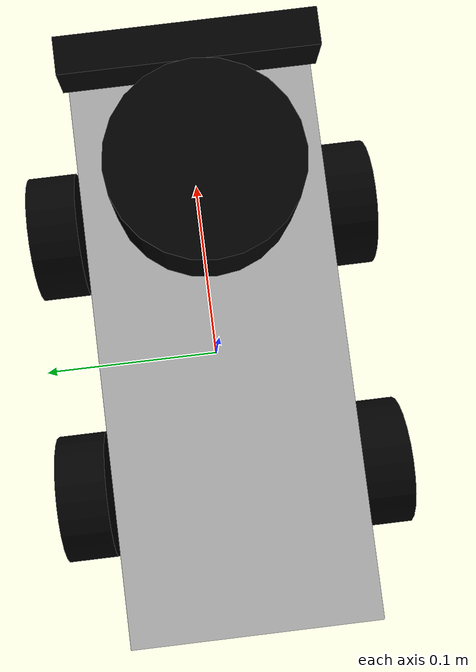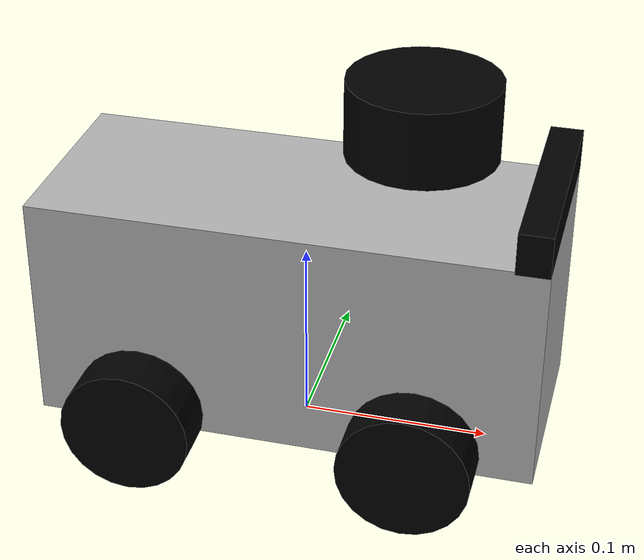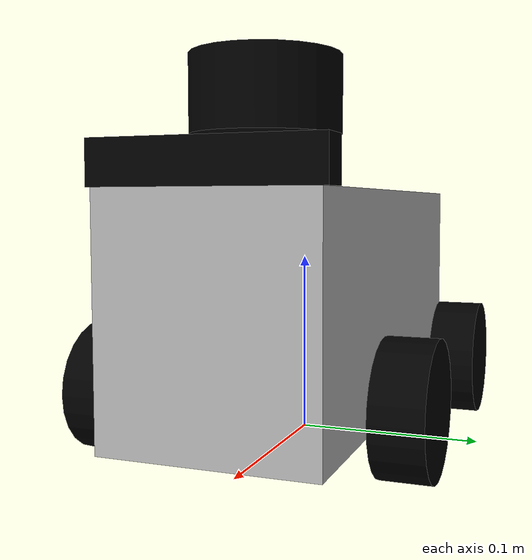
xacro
<?xml version="1.0"?>

<robot xmlns:xacro="http://www.ros.org/wiki/xacro" name="wuyang_ackermann">
    <xacro:include filename="sensor_laser.urdf.xacro"/>
    <xacro:include filename="sensor_camera.urdf.xacro"/>
    <xacro:include filename="gazebo_control.urdf.xacro"/>

    <material name="black">
        <color rgba="0.0 0.0 0.0 1.0" />
    </material>
    <material name="blue">
        <color rgba="0.2 0.2 0.8 1.0"/>
    </material>
    <material name="sliver">
        <color rgba="0.7 0.7 0.7 1.0"/>
    </material>

    <link name="base_footprint"/>

    <link name="base_link">
        <inertial>
            <origin xyz="0.0 0.0 0.0" rpy="0.0 0.0 0.0"/>
            <mass value="3.0"/>
            <inertia ixx="0.0068" ixy="0.0" ixz="0.0" iyy="0.0213" iyz="0.0" izz="0.0206"/>
        </inertial>
        <visual name="RectangularPrism">
            <origin xyz="0.0 0.0 0.0" rpy="0.0 0.0 0.0"/>
            <geometry>
                <box size="0.265 0.11 0.123"/>
            </geometry>
            <material name="sliver"/>
        </visual>
        <collision>
            <origin xyz="0.0 0.0 0.0" rpy="0.0 0.0 0.0"/>
            <geometry>
                <box size="0.265 0.11 0.123"/>
            </geometry>
        </collision>
    </link>

    <joint name="joint_name" type="fixed">
        <origin xyz="0.0 0.0 0.0765" rpy="0.0 0.0 0.0"/>
        <parent link="base_footprint"/>
        <child link="base_link"/>
        <axis xyz="0.0 0.0 0.0"/>
        <limit lower="0.0" upper="0.0" effort="0.0" velocity="0.0"/>
    </joint>

    <xacro:macro name="front_steering_wheel" params="prefix y_reflect">
        <link name="${prefix}_knuckle">
            <inertial>
                <origin xyz="0.0 0.0 0.0" rpy="0.0 0.0 0.0"/>
                <mass value="0.1"/>
                <inertia ixx="0.00001" ixy="0.0" ixz="0.0" iyy="0.00001" iyz="0.0" izz="0.00001"/>
            </inertial>
        </link>

        <joint name="${prefix}_steering_joint" type="revolute">
            <origin xyz="0.072 ${0.079 * y_reflect} -0.0425" rpy="0.0 0.0 0.0"/>
            <parent link="base_link"/>
            <child link="${prefix}_knuckle"/>
            <axis xyz="0.0 0.0 1.0"/>
            <limit lower="-0.6055" upper="0.6055" effort="10.0" velocity="10.0"/>
        </joint>

        <link name="${prefix}_wheel">
            <inertial>
                <origin xyz="0.0 0.0 0.0" rpy="0.0 0.0 0.0"/>
                <mass value="0.1"/>
                <inertia ixx="0.0001" ixy="0.0" ixz="0.0" iyy="0.0001" iyz="0.0" izz="0.0001"/>
            </inertial>
            <visual>
                <origin xyz="0.0 0.0 0.0" rpy="1.5708 0.0 0.0"/>
                <geometry>
                    <cylinder radius="0.034" length="0.026"/>
                </geometry>
                <material name="black"/>
            </visual>
            <collision>
                <origin xyz="0.0 0.0 0.0" rpy="1.5708 0.0 0.0"/>
                <geometry>
                    <cylinder radius="0.034" length="0.026"/>
                </geometry>
            </collision>
        </link>

        <joint name="${prefix}_rolling_joint" type="continuous">
            <origin xyz="0.0 0.0 0.0" rpy="0.0 0.0 0.0"/>
            <parent link="${prefix}_knuckle"/>
            <child link="${prefix}_wheel"/>
            <axis xyz="0.0 1.0 0.0"/>
        </joint>
    </xacro:macro>

    <xacro:macro name="rear_wheel" params="prefix y_reflect">
        <link name="${prefix}_wheel">
            <inertial>
                <origin xyz="0.0 0.0 0.0" rpy="0.0 0.0 0.0"/>
                <mass value="0.1"/>
                <inertia ixx="0.0001" ixy="0.0" ixz="0.0" iyy="0.0001" iyz="0.0" izz="0.0001"/>
            </inertial>
            <visual>
                <origin xyz="0.0 0.0 0.0" rpy="1.5708 0.0 0.0"/>
                <geometry>
                    <cylinder radius="0.034" length="0.026"/>
                </geometry>
                <material name="black"/>
            </visual>
            <collision>
                <origin xyz="0.0 0.0 0.0" rpy="1.5708 0.0 0.0"/>
                <geometry>
                    <cylinder radius="0.034" length="0.026"/>
                </geometry>
            </collision>
        </link>

        <joint name="${prefix}_rolling_joint" type="continuous">
            <origin xyz="-0.072 ${0.079 * y_reflect} -0.0425" rpy="0.0 0.0 0.0"/>
            <parent link="base_link"/>
            <child link="${prefix}_wheel"/>
            <axis xyz="0.0 1.0 0.0"/>
        </joint>
    </xacro:macro>

    <xacro:front_steering_wheel prefix="left_front" y_reflect="1"/>
    <xacro:front_steering_wheel prefix="right_front" y_reflect="-1"/>

    <xacro:rear_wheel prefix="left_rear" y_reflect="1"/>
    <xacro:rear_wheel prefix="right_rear" y_reflect="-1"/>

    <xacro:LS_m10p parent="base_link" xyz="0.059 0.0 0.109"/>

    <xacro:GeminiPro_camera parent="base_link" xyz="0.1325 0.0 0.0615"/>

    <xacro:gazebo_control/>
</robot>

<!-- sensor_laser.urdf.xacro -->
<robot xmlns:xacro="http://www.ros.org/wiki/xacro" name="sensor_laser">
    <xacro:macro name="LS_m10p" params="parent xyz">
        <link name="laser_link">
            <inertial>
                <origin xyz="0.0 0.0 0.0" rpy="0.0 0.0 0.0"/>
                <mass value="0.3"/>
                <inertia ixx="0.000154" ixy="0.0" ixz="0.0" iyy="0.000154" iyz="0.0" izz="0.000228"/>
            </inertial>
            <visual>
                <origin xyz="0.0 0.0 0.0" rpy="0.0 0.0 0.0"/>
                <geometry>
                    <cylinder radius="0.039" length="0.04"/>
                </geometry>
                <material name="black"/>
            </visual>
            <collision>
                <origin xyz="0.0 0.0 0.0" rpy="0.0 0.0 0.0"/>
                <geometry>
                    <cylinder radius="0.039" length="0.04"/>
                </geometry>
            </collision>
        </link>

        <joint name="laser_joint" type="fixed">
            <origin xyz="${xyz}" rpy="0.0 0.0 0.0"/>
            <parent link="${parent}"/>
            <child link="laser_link"/>
            <axis xyz="0.0 0.0 0.0"/>
        </joint>

        <gazebo reference="laser_link">
            <sensor name="laserscan" type="ray">
                <plugin name="laserscan" filename="libgazebo_ros_ray_sensor.so">
                    <ros>
                        <namespace>/</namespace>
                        <remapping>~/out:=scan</remapping>
                    </ros>
                    <output_type>sensor_msgs/LaserScan</output_type>
                    <frame_name>laser_link</frame_name>
                </plugin>
                <always_on>true</always_on>
                <visualize>false</visualize>
                <update_rate>5</update_rate>
                <pose>0 0 0 0 0 0</pose>
                <ray>
                    <scan>
                        <horizontal>
                            <samples>1500</samples>
                            <resolution>1.000000</resolution>
                            <min_angle>0.000000</min_angle>
                            <max_angle>6.280000</max_angle>
                        </horizontal>
                    </scan>
                    <range>
                        <min>0.120000</min>
                        <max>10.0</max>
                        <resolution>0.015000</resolution>
                    </range>
                    <noise>
                        <type>gaussian</type>
                        <mean>0.0</mean>
                        <stddev>0.01</stddev>
                    </noise>
                </ray>
            </sensor>
        </gazebo>

    </xacro:macro>
</robot>

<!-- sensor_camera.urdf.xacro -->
<robot xmlns:xacro="http://www.ros.org/wiki/xacro" name="sensor_camera">
    <xacro:macro name="GeminiPro_camera" params="parent xyz">
        <link name="camera_body_link">
            <inertial>
                <origin xyz="0.0 0.0 0.0" rpy="0.0 0.0 0.0"/>
                <mass value="0.05"/>
                <inertia ixx="0.000057" ixy="0.0" ixz="0.0" iyy="0.000003" iyz="0.0" izz="0.000056"/>
            </inertial>
            <visual>
                <origin xyz="0.0 0.0 0.0" rpy="0.0 0.0 0.0"/>
                <geometry>
                    <box size="0.017 0.115 0.022"/>
                </geometry>
                <material name="black"/>
            </visual>
            <collision>
                <origin xyz="0.0 0.0 0.0" rpy="0.0 0.0 0.0"/>
                <geometry>
                    <box size="0.017 0.115 0.022"/>
                </geometry>
            </collision>
        </link>

        <link name="camera_pitch_link">
            <inertial>
                <origin xyz="0.0 0.0 0.0" rpy="0.0 0.0 0.0"/>
                <mass value="0.1"/>
                <inertia ixx="0.00001" ixy="0.0" ixz="0.0" iyy="0.00001" iyz="0.0" izz="0.00001"/>
            </inertial>
        </link>

        <joint name="camera_base_joint" type="revolute">
            <origin xyz="${xyz}" rpy="0.0 0.0 0.0"/>
            <parent link="${parent}"/>
            <child link="camera_pitch_link"/>
            <axis xyz="0.0 1.0 0.0"/>
            <limit lower="0.0" upper="0.7854" effort="1.0" velocity="1.0"/>
        </joint>

        <joint name="camera_mount_joint" type="fixed">
            <origin xyz="-0.0085 0.0 0.011" rpy="0.0 0.0 0.0"/>
            <parent link="camera_pitch_link"/>
            <child link="camera_body_link"/>
            <axis xyz="0.0 0.0 0.0"/>
        </joint>

        <link name="camera_optical_link"/>
        <joint name="camera_optical_joint" type="fixed">
            <origin xyz="0 0 0" rpy="-1.5708 0 -1.5708"/>
            <parent link="camera_body_link"/>
            <child link="camera_optical_link"/>
        </joint>

        <gazebo reference="camera_body_link">
            <sensor type="depth" name="gemini_pro_sensor">
                <always_on>true</always_on>
                <update_rate>30.0</update_rate>
                <camera name="camera">
                    <horizontal_fov>1.5708</horizontal_fov>
                    <image>
                        <width>800</width>
                        <height>600</height>
                        <format>R8G8B8</format>
                    </image>
                    <clip>
                        <near>0.15</near>
                        <far>10.0</far>
                    </clip>
                    <noise>
                        <type>gaussian</type>
                        <mean>0.0</mean>
                        <stddev>0.007</stddev>
                    </noise>
                </camera>
                <plugin name="gemini_camera_controller" filename="libgazebo_ros_camera.so">
                    <ros>
                        <namespace></namespace>
                        <remapping>~/image_raw:=image_raw</remapping>
                        <remapping>~/camera_info:=camera_info</remapping>
                        <remapping>~/depth/image_raw:=depth/image_raw</remapping>
                        <remapping>~/depth/camera_info:=depth/camera_info</remapping>
                        <remapping>~/points:=points</remapping>
                    </ros>
                    <camera_name>gemini_pro</camera_name>
                    <frame_name>camera_optical_link</frame_name>
                    <min_depth>0.15</min_depth>
                    <max_depth>10.0</max_depth>
                </plugin>
            </sensor>
        </gazebo>

    </xacro:macro>
</robot>
